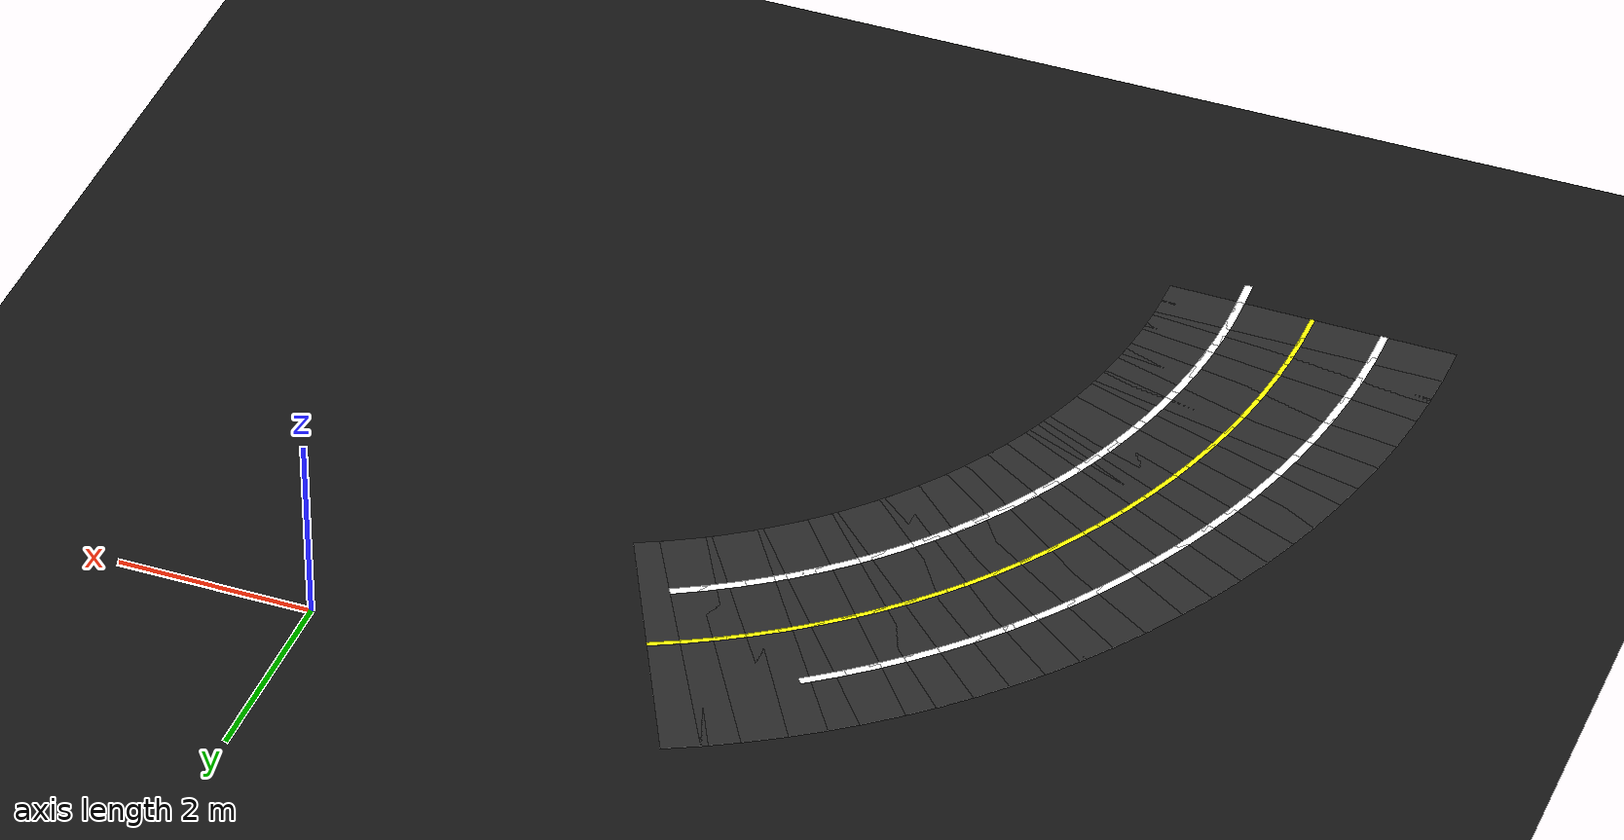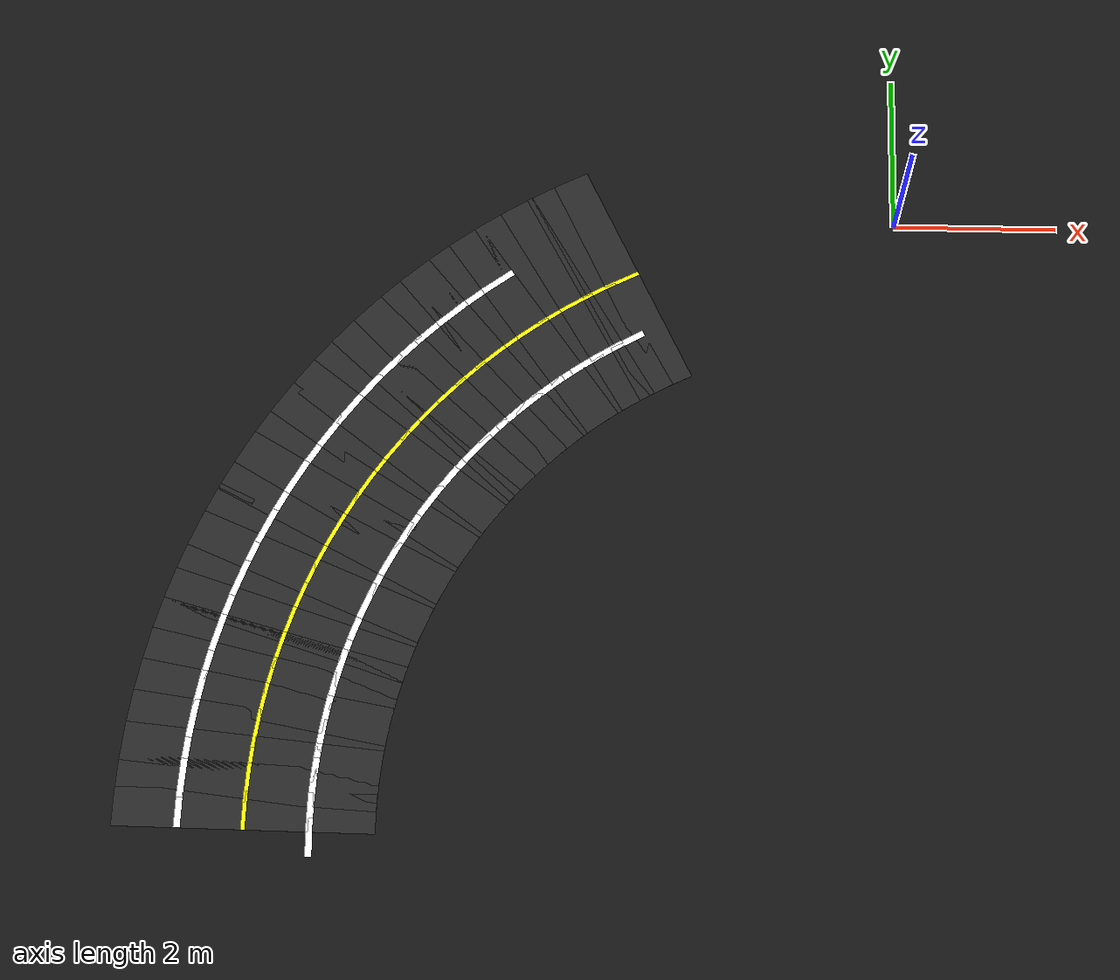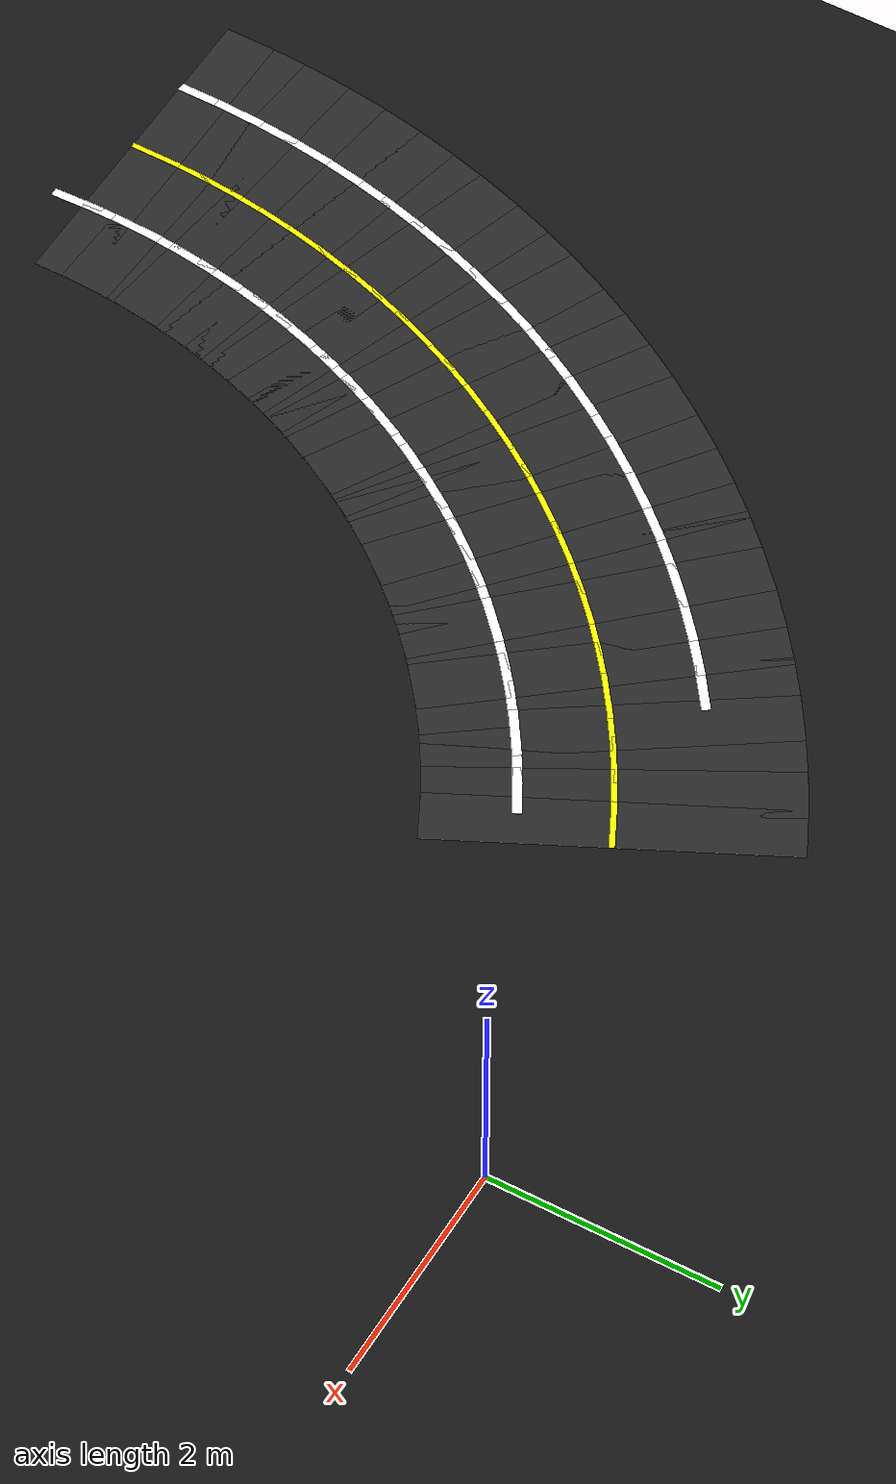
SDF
<sdf version="1.6">
 <world name="figure8_world">
  <model name="ground_plane">
   <static>true</static>
   <link name="link">
    <collision name="collision">
     <geometry><plane><normal>0 0 1</normal><size>100 100</size></plane></geometry>
    </collision>
    <visual name="visual">
     <geometry><plane><normal>0 0 1</normal><size>100 100</size></plane></geometry>
     <material><ambient>0.08 0.08 0.08 1</ambient><diffuse>0.08 0.08 0.08 1</diffuse></material>
    </visual>
   </link>
  </model>
  <model name="seg_00974">
   <static>true</static>
   <pose>-6.7466 -7.7134 0.0030 0 0 1.6024</pose>
   <link name="link">
    <collision name="collision"><geometry><box><size>0.4500 0.0800 0.002</size></box></geometry></collision>
    <visual name="visual">
     <geometry><box><size>0.4500 0.0800 0.002</size></box></geometry>
     <material><ambient>1 1 1 1</ambient><diffuse>1 1 1 1</diffuse></material>
    </visual>
   </link>
  </model>
  <model name="seg_00976">
   <static>true</static>
   <pose>-7.4996 -7.4209 0.0010 0 0 1.5603</pose>
   <link name="link">
    <collision name="collision"><geometry><box><size>0.4500 3.0000 0.002</size></box></geometry></collision>
    <visual name="visual">
     <geometry><box><size>0.4500 3.0000 0.002</size></box></geometry>
     <material><ambient>0.15 0.15 0.15 1</ambient><diffuse>0.15 0.15 0.15 1</diffuse></material>
    </visual>
   </link>
  </model>
  <model name="seg_00977">
   <static>true</static>
   <pose>-8.2495 -7.4130 0.0030 0 0 1.5603</pose>
   <link name="link">
    <collision name="collision"><geometry><box><size>0.4500 0.0800 0.002</size></box></geometry></collision>
    <visual name="visual">
     <geometry><box><size>0.4500 0.0800 0.002</size></box></geometry>
     <material><ambient>1 1 1 1</ambient><diffuse>1 1 1 1</diffuse></material>
    </visual>
   </link>
  </model>
  <model name="seg_00978">
   <static>true</static>
   <pose>-6.7496 -7.4288 0.0030 0 0 1.5603</pose>
   <link name="link">
    <collision name="collision"><geometry><box><size>0.4500 0.0800 0.002</size></box></geometry></collision>
    <visual name="visual">
     <geometry><box><size>0.4500 0.0800 0.002</size></box></geometry>
     <material><ambient>1 1 1 1</ambient><diffuse>1 1 1 1</diffuse></material>
    </visual>
   </link>
  </model>
  <model name="seg_00979">
   <static>true</static>
   <pose>-7.4996 -7.4209 0.0030 0 0 1.5603</pose>
   <link name="link">
    <collision name="collision"><geometry><box><size>0.4500 0.0500 0.002</size></box></geometry></collision>
    <visual name="visual">
     <geometry><box><size>0.4500 0.0500 0.002</size></box></geometry>
     <material><ambient>1 1 0 1</ambient><diffuse>1 1 0 1</diffuse></material>
    </visual>
   </link>
  </model>
  <model name="seg_00980">
   <static>true</static>
   <pose>-7.4896 -7.1048 0.0010 0 0 1.5181</pose>
   <link name="link">
    <collision name="collision"><geometry><box><size>0.4500 3.0000 0.002</size></box></geometry></collision>
    <visual name="visual">
     <geometry><box><size>0.4500 3.0000 0.002</size></box></geometry>
     <material><ambient>0.15 0.15 0.15 1</ambient><diffuse>0.15 0.15 0.15 1</diffuse></material>
    </visual>
   </link>
  </model>
  <model name="seg_00981">
   <static>true</static>
   <pose>-8.2385 -7.0653 0.0030 0 0 1.5181</pose>
   <link name="link">
    <collision name="collision"><geometry><box><size>0.4500 0.0800 0.002</size></box></geometry></collision>
    <visual name="visual">
     <geometry><box><size>0.4500 0.0800 0.002</size></box></geometry>
     <material><ambient>1 1 1 1</ambient><diffuse>1 1 1 1</diffuse></material>
    </visual>
   </link>
  </model>
  <model name="seg_00982">
   <static>true</static>
   <pose>-6.7406 -7.1444 0.0030 0 0 1.5181</pose>
   <link name="link">
    <collision name="collision"><geometry><box><size>0.4500 0.0800 0.002</size></box></geometry></collision>
    <visual name="visual">
     <geometry><box><size>0.4500 0.0800 0.002</size></box></geometry>
     <material><ambient>1 1 1 1</ambient><diffuse>1 1 1 1</diffuse></material>
    </visual>
   </link>
  </model>
  <model name="seg_00983">
   <static>true</static>
   <pose>-7.4896 -7.1048 0.0030 0 0 1.5181</pose>
   <link name="link">
    <collision name="collision"><geometry><box><size>0.4500 0.0500 0.002</size></box></geometry></collision>
    <visual name="visual">
     <geometry><box><size>0.4500 0.0500 0.002</size></box></geometry>
     <material><ambient>1 1 0 1</ambient><diffuse>1 1 0 1</diffuse></material>
    </visual>
   </link>
  </model>
  <model name="seg_00984">
   <static>true</static>
   <pose>-7.4663 -6.7895 0.0010 0 0 1.4759</pose>
   <link name="link">
    <collision name="collision"><geometry><box><size>0.4500 3.0000 0.002</size></box></geometry></collision>
    <visual name="visual">
     <geometry><box><size>0.4500 3.0000 0.002</size></box></geometry>
     <material><ambient>0.15 0.15 0.15 1</ambient><diffuse>0.15 0.15 0.15 1</diffuse></material>
    </visual>
   </link>
  </model>
  <model name="seg_00985">
   <static>true</static>
   <pose>-8.2129 -6.7184 0.0030 0 0 1.4759</pose>
   <link name="link">
    <collision name="collision"><geometry><box><size>0.4500 0.0800 0.002</size></box></geometry></collision>
    <visual name="visual">
     <geometry><box><size>0.4500 0.0800 0.002</size></box></geometry>
     <material><ambient>1 1 1 1</ambient><diffuse>1 1 1 1</diffuse></material>
    </visual>
   </link>
  </model>
  <model name="seg_00986">
   <static>true</static>
   <pose>-6.7196 -6.8605 0.0030 0 0 1.4759</pose>
   <link name="link">
    <collision name="collision"><geometry><box><size>0.4500 0.0800 0.002</size></box></geometry></collision>
    <visual name="visual">
     <geometry><box><size>0.4500 0.0800 0.002</size></box></geometry>
     <material><ambient>1 1 1 1</ambient><diffuse>1 1 1 1</diffuse></material>
    </visual>
   </link>
  </model>
  <model name="seg_00987">
   <static>true</static>
   <pose>-7.4663 -6.7895 0.0030 0 0 1.4759</pose>
   <link name="link">
    <collision name="collision"><geometry><box><size>0.4500 0.0500 0.002</size></box></geometry></collision>
    <visual name="visual">
     <geometry><box><size>0.4500 0.0500 0.002</size></box></geometry>
     <material><ambient>1 1 0 1</ambient><diffuse>1 1 0 1</diffuse></material>
    </visual>
   </link>
  </model>
  <model name="seg_00988">
   <static>true</static>
   <pose>-7.4297 -6.4753 0.0010 0 0 1.4337</pose>
   <link name="link">
    <collision name="collision"><geometry><box><size>0.4500 3.0000 0.002</size></box></geometry></collision>
    <visual name="visual">
     <geometry><box><size>0.4500 3.0000 0.002</size></box></geometry>
     <material><ambient>0.15 0.15 0.15 1</ambient><diffuse>0.15 0.15 0.15 1</diffuse></material>
    </visual>
   </link>
  </model>
  <model name="seg_00989">
   <static>true</static>
   <pose>-8.1726 -6.3729 0.0030 0 0 1.4337</pose>
   <link name="link">
    <collision name="collision"><geometry><box><size>0.4500 0.0800 0.002</size></box></geometry></collision>
    <visual name="visual">
     <geometry><box><size>0.4500 0.0800 0.002</size></box></geometry>
     <material><ambient>1 1 1 1</ambient><diffuse>1 1 1 1</diffuse></material>
    </visual>
   </link>
  </model>
  <model name="seg_00990">
   <static>true</static>
   <pose>-6.6867 -6.5778 0.0030 0 0 1.4337</pose>
   <link name="link">
    <collision name="collision"><geometry><box><size>0.4500 0.0800 0.002</size></box></geometry></collision>
    <visual name="visual">
     <geometry><box><size>0.4500 0.0800 0.002</size></box></geometry>
     <material><ambient>1 1 1 1</ambient><diffuse>1 1 1 1</diffuse></material>
    </visual>
   </link>
  </model>
  <model name="seg_00991">
   <static>true</static>
   <pose>-7.4297 -6.4753 0.0030 0 0 1.4337</pose>
   <link name="link">
    <collision name="collision"><geometry><box><size>0.4500 0.0500 0.002</size></box></geometry></collision>
    <visual name="visual">
     <geometry><box><size>0.4500 0.0500 0.002</size></box></geometry>
     <material><ambient>1 1 0 1</ambient><diffuse>1 1 0 1</diffuse></material>
    </visual>
   </link>
  </model>
  <model name="seg_00992">
   <static>true</static>
   <pose>-7.3799 -6.1630 0.0010 0 0 1.3916</pose>
   <link name="link">
    <collision name="collision"><geometry><box><size>0.4500 3.0000 0.002</size></box></geometry></collision>
    <visual name="visual">
     <geometry><box><size>0.4500 3.0000 0.002</size></box></geometry>
     <material><ambient>0.15 0.15 0.15 1</ambient><diffuse>0.15 0.15 0.15 1</diffuse></material>
    </visual>
   </link>
  </model>
  <model name="seg_00993">
   <static>true</static>
   <pose>-8.1179 -6.0294 0.0030 0 0 1.3916</pose>
   <link name="link">
    <collision name="collision"><geometry><box><size>0.4500 0.0800 0.002</size></box></geometry></collision>
    <visual name="visual">
     <geometry><box><size>0.4500 0.0800 0.002</size></box></geometry>
     <material><ambient>1 1 1 1</ambient><diffuse>1 1 1 1</diffuse></material>
    </visual>
   </link>
  </model>
  <model name="seg_00994">
   <static>true</static>
   <pose>-6.6419 -6.2967 0.0030 0 0 1.3916</pose>
   <link name="link">
    <collision name="collision"><geometry><box><size>0.4500 0.0800 0.002</size></box></geometry></collision>
    <visual name="visual">
     <geometry><box><size>0.4500 0.0800 0.002</size></box></geometry>
     <material><ambient>1 1 1 1</ambient><diffuse>1 1 1 1</diffuse></material>
    </visual>
   </link>
  </model>
  <model name="seg_00995">
   <static>true</static>
   <pose>-7.3799 -6.1630 0.0030 0 0 1.3916</pose>
   <link name="link">
    <collision name="collision"><geometry><box><size>0.4500 0.0500 0.002</size></box></geometry></collision>
    <visual name="visual">
     <geometry><box><size>0.4500 0.0500 0.002</size></box></geometry>
     <material><ambient>1 1 0 1</ambient><diffuse>1 1 0 1</diffuse></material>
    </visual>
   </link>
  </model>
  <model name="seg_00996">
   <static>true</static>
   <pose>-7.3170 -5.8531 0.0010 0 0 1.3494</pose>
   <link name="link">
    <collision name="collision"><geometry><box><size>0.4500 3.0000 0.002</size></box></geometry></collision>
    <visual name="visual">
     <geometry><box><size>0.4500 3.0000 0.002</size></box></geometry>
     <material><ambient>0.15 0.15 0.15 1</ambient><diffuse>0.15 0.15 0.15 1</diffuse></material>
    </visual>
   </link>
  </model>
  <model name="seg_00997">
   <static>true</static>
   <pose>-8.0486 -5.6884 0.0030 0 0 1.3494</pose>
   <link name="link">
    <collision name="collision"><geometry><box><size>0.4500 0.0800 0.002</size></box></geometry></collision>
    <visual name="visual">
     <geometry><box><size>0.4500 0.0800 0.002</size></box></geometry>
     <material><ambient>1 1 1 1</ambient><diffuse>1 1 1 1</diffuse></material>
    </visual>
   </link>
  </model>
  <model name="seg_00998">
   <static>true</static>
   <pose>-6.5853 -6.0178 0.0030 0 0 1.3494</pose>
   <link name="link">
    <collision name="collision"><geometry><box><size>0.4500 0.0800 0.002</size></box></geometry></collision>
    <visual name="visual">
     <geometry><box><size>0.4500 0.0800 0.002</size></box></geometry>
     <material><ambient>1 1 1 1</ambient><diffuse>1 1 1 1</diffuse></material>
    </visual>
   </link>
  </model>
  <model name="seg_00999">
   <static>true</static>
   <pose>-7.3170 -5.8531 0.0030 0 0 1.3494</pose>
   <link name="link">
    <collision name="collision"><geometry><box><size>0.4500 0.0500 0.002</size></box></geometry></collision>
    <visual name="visual">
     <geometry><box><size>0.4500 0.0500 0.002</size></box></geometry>
     <material><ambient>1 1 0 1</ambient><diffuse>1 1 0 1</diffuse></material>
    </visual>
   </link>
  </model>
  <model name="seg_01000">
   <static>true</static>
   <pose>-7.2410 -5.5461 0.0010 0 0 1.3072</pose>
   <link name="link">
    <collision name="collision"><geometry><box><size>0.4500 3.0000 0.002</size></box></geometry></collision>
    <visual name="visual">
     <geometry><box><size>0.4500 3.0000 0.002</size></box></geometry>
     <material><ambient>0.15 0.15 0.15 1</ambient><diffuse>0.15 0.15 0.15 1</diffuse></material>
    </visual>
   </link>
  </model>
  <model name="seg_01001">
   <static>true</static>
   <pose>-7.9651 -5.3507 0.0030 0 0 1.3072</pose>
   <link name="link">
    <collision name="collision"><geometry><box><size>0.4500 0.0800 0.002</size></box></geometry></collision>
    <visual name="visual">
     <geometry><box><size>0.4500 0.0800 0.002</size></box></geometry>
     <material><ambient>1 1 1 1</ambient><diffuse>1 1 1 1</diffuse></material>
    </visual>
   </link>
  </model>
  <model name="seg_01002">
   <static>true</static>
   <pose>-6.5169 -5.7415 0.0030 0 0 1.3072</pose>
   <link name="link">
    <collision name="collision"><geometry><box><size>0.4500 0.0800 0.002</size></box></geometry></collision>
    <visual name="visual">
     <geometry><box><size>0.4500 0.0800 0.002</size></box></geometry>
     <material><ambient>1 1 1 1</ambient><diffuse>1 1 1 1</diffuse></material>
    </visual>
   </link>
  </model>
  <model name="seg_01003">
   <static>true</static>
   <pose>-7.2410 -5.5461 0.0030 0 0 1.3072</pose>
   <link name="link">
    <collision name="collision"><geometry><box><size>0.4500 0.0500 0.002</size></box></geometry></collision>
    <visual name="visual">
     <geometry><box><size>0.4500 0.0500 0.002</size></box></geometry>
     <material><ambient>1 1 0 1</ambient><diffuse>1 1 0 1</diffuse></material>
    </visual>
   </link>
  </model>
  <model name="seg_01004">
   <static>true</static>
   <pose>-7.1522 -5.2426 0.0010 0 0 1.2651</pose>
   <link name="link">
    <collision name="collision"><geometry><box><size>0.4500 3.0000 0.002</size></box></geometry></collision>
    <visual name="visual">
     <geometry><box><size>0.4500 3.0000 0.002</size></box></geometry>
     <material><ambient>0.15 0.15 0.15 1</ambient><diffuse>0.15 0.15 0.15 1</diffuse></material>
    </visual>
   </link>
  </model>
  <model name="seg_01005">
   <static>true</static>
   <pose>-7.8674 -5.0169 0.0030 0 0 1.2651</pose>
   <link name="link">
    <collision name="collision"><geometry><box><size>0.4500 0.0800 0.002</size></box></geometry></collision>
    <visual name="visual">
     <geometry><box><size>0.4500 0.0800 0.002</size></box></geometry>
     <material><ambient>1 1 1 1</ambient><diffuse>1 1 1 1</diffuse></material>
    </visual>
   </link>
  </model>
  <model name="seg_01006">
   <static>true</static>
   <pose>-6.4370 -5.4684 0.0030 0 0 1.2651</pose>
   <link name="link">
    <collision name="collision"><geometry><box><size>0.4500 0.0800 0.002</size></box></geometry></collision>
    <visual name="visual">
     <geometry><box><size>0.4500 0.0800 0.002</size></box></geometry>
     <material><ambient>1 1 1 1</ambient><diffuse>1 1 1 1</diffuse></material>
    </visual>
   </link>
  </model>
  <model name="seg_01007">
   <static>true</static>
   <pose>-7.1522 -5.2426 0.0030 0 0 1.2651</pose>
   <link name="link">
    <collision name="collision"><geometry><box><size>0.4500 0.0500 0.002</size></box></geometry></collision>
    <visual name="visual">
     <geometry><box><size>0.4500 0.0500 0.002</size></box></geometry>
     <material><ambient>1 1 0 1</ambient><diffuse>1 1 0 1</diffuse></material>
    </visual>
   </link>
  </model>
  <model name="seg_01008">
   <static>true</static>
   <pose>-7.0507 -4.9431 0.0010 0 0 1.2229</pose>
   <link name="link">
    <collision name="collision"><geometry><box><size>0.4500 3.0000 0.002</size></box></geometry></collision>
    <visual name="visual">
     <geometry><box><size>0.4500 3.0000 0.002</size></box></geometry>
     <material><ambient>0.15 0.15 0.15 1</ambient><diffuse>0.15 0.15 0.15 1</diffuse></material>
    </visual>
   </link>
  </model>
  <model name="seg_01009">
   <static>true</static>
   <pose>-7.7558 -4.6874 0.0030 0 0 1.2229</pose>
   <link name="link">
    <collision name="collision"><geometry><box><size>0.4500 0.0800 0.002</size></box></geometry></collision>
    <visual name="visual">
     <geometry><box><size>0.4500 0.0800 0.002</size></box></geometry>
     <material><ambient>1 1 1 1</ambient><diffuse>1 1 1 1</diffuse></material>
    </visual>
   </link>
  </model>
  <model name="seg_01010">
   <static>true</static>
   <pose>-6.3456 -5.1988 0.0030 0 0 1.2229</pose>
   <link name="link">
    <collision name="collision"><geometry><box><size>0.4500 0.0800 0.002</size></box></geometry></collision>
    <visual name="visual">
     <geometry><box><size>0.4500 0.0800 0.002</size></box></geometry>
     <material><ambient>1 1 1 1</ambient><diffuse>1 1 1 1</diffuse></material>
    </visual>
   </link>
  </model>
  <model name="seg_01011">
   <static>true</static>
   <pose>-7.0507 -4.9431 0.0030 0 0 1.2229</pose>
   <link name="link">
    <collision name="collision"><geometry><box><size>0.4500 0.0500 0.002</size></box></geometry></collision>
    <visual name="visual">
     <geometry><box><size>0.4500 0.0500 0.002</size></box></geometry>
     <material><ambient>1 1 0 1</ambient><diffuse>1 1 0 1</diffuse></material>
    </visual>
   </link>
  </model>
  <model name="seg_01012">
   <static>true</static>
   <pose>-6.9366 -4.6481 0.0010 0 0 1.1807</pose>
   <link name="link">
    <collision name="collision"><geometry><box><size>0.4500 3.0000 0.002</size></box></geometry></collision>
    <visual name="visual">
     <geometry><box><size>0.4500 3.0000 0.002</size></box></geometry>
     <material><ambient>0.15 0.15 0.15 1</ambient><diffuse>0.15 0.15 0.15 1</diffuse></material>
    </visual>
   </link>
  </model>
  <model name="seg_01013">
   <static>true</static>
   <pose>-7.6303 -4.3630 0.0030 0 0 1.1807</pose>
   <link name="link">
    <collision name="collision"><geometry><box><size>0.4500 0.0800 0.002</size></box></geometry></collision>
    <visual name="visual">
     <geometry><box><size>0.4500 0.0800 0.002</size></box></geometry>
     <material><ambient>1 1 1 1</ambient><diffuse>1 1 1 1</diffuse></material>
    </visual>
   </link>
  </model>
  <model name="seg_01014">
   <static>true</static>
   <pose>-6.2430 -4.9333 0.0030 0 0 1.1807</pose>
   <link name="link">
    <collision name="collision"><geometry><box><size>0.4500 0.0800 0.002</size></box></geometry></collision>
    <visual name="visual">
     <geometry><box><size>0.4500 0.0800 0.002</size></box></geometry>
     <material><ambient>1 1 1 1</ambient><diffuse>1 1 1 1</diffuse></material>
    </visual>
   </link>
  </model>
  <model name="seg_01015">
   <static>true</static>
   <pose>-6.9366 -4.6481 0.0030 0 0 1.1807</pose>
   <link name="link">
    <collision name="collision"><geometry><box><size>0.4500 0.0500 0.002</size></box></geometry></collision>
    <visual name="visual">
     <geometry><box><size>0.4500 0.0500 0.002</size></box></geometry>
     <material><ambient>1 1 0 1</ambient><diffuse>1 1 0 1</diffuse></material>
    </visual>
   </link>
  </model>
  <model name="seg_01016">
   <static>true</static>
   <pose>-6.8102 -4.3583 0.0010 0 0 1.1386</pose>
   <link name="link">
    <collision name="collision"><geometry><box><size>0.4500 3.0000 0.002</size></box></geometry></collision>
    <visual name="visual">
     <geometry><box><size>0.4500 3.0000 0.002</size></box></geometry>
     <material><ambient>0.15 0.15 0.15 1</ambient><diffuse>0.15 0.15 0.15 1</diffuse></material>
    </visual>
   </link>
  </model>
  <model name="seg_01017">
   <static>true</static>
   <pose>-7.4913 -4.0441 0.0030 0 0 1.1386</pose>
   <link name="link">
    <collision name="collision"><geometry><box><size>0.4500 0.0800 0.002</size></box></geometry></collision>
    <visual name="visual">
     <geometry><box><size>0.4500 0.0800 0.002</size></box></geometry>
     <material><ambient>1 1 1 1</ambient><diffuse>1 1 1 1</diffuse></material>
    </visual>
   </link>
  </model>
  <model name="seg_01018">
   <static>true</static>
   <pose>-6.1292 -4.6724 0.0030 0 0 1.1386</pose>
   <link name="link">
    <collision name="collision"><geometry><box><size>0.4500 0.0800 0.002</size></box></geometry></collision>
    <visual name="visual">
     <geometry><box><size>0.4500 0.0800 0.002</size></box></geometry>
     <material><ambient>1 1 1 1</ambient><diffuse>1 1 1 1</diffuse></material>
    </visual>
   </link>
  </model>
  <model name="seg_01019">
   <static>true</static>
   <pose>-6.8102 -4.3583 0.0030 0 0 1.1386</pose>
   <link name="link">
    <collision name="collision"><geometry><box><size>0.4500 0.0500 0.002</size></box></geometry></collision>
    <visual name="visual">
     <geometry><box><size>0.4500 0.0500 0.002</size></box></geometry>
     <material><ambient>1 1 0 1</ambient><diffuse>1 1 0 1</diffuse></material>
    </visual>
   </link>
  </model>
  <model name="seg_01020">
   <static>true</static>
   <pose>-6.6717 -4.0740 0.0010 0 0 1.0964</pose>
   <link name="link">
    <collision name="collision"><geometry><box><size>0.4500 3.0000 0.002</size></box></geometry></collision>
    <visual name="visual">
     <geometry><box><size>0.4500 3.0000 0.002</size></box></geometry>
     <material><ambient>0.15 0.15 0.15 1</ambient><diffuse>0.15 0.15 0.15 1</diffuse></material>
    </visual>
   </link>
  </model>
  <model name="seg_01021">
   <static>true</static>
   <pose>-7.3389 -3.7313 0.0030 0 0 1.0964</pose>
   <link name="link">
    <collision name="collision"><geometry><box><size>0.4500 0.0800 0.002</size></box></geometry></collision>
    <visual name="visual">
     <geometry><box><size>0.4500 0.0800 0.002</size></box></geometry>
     <material><ambient>1 1 1 1</ambient><diffuse>1 1 1 1</diffuse></material>
    </visual>
   </link>
  </model>
  <model name="seg_01022">
   <static>true</static>
   <pose>-6.0046 -4.4166 0.0030 0 0 1.0964</pose>
   <link name="link">
    <collision name="collision"><geometry><box><size>0.4500 0.0800 0.002</size></box></geometry></collision>
    <visual name="visual">
     <geometry><box><size>0.4500 0.0800 0.002</size></box></geometry>
     <material><ambient>1 1 1 1</ambient><diffuse>1 1 1 1</diffuse></material>
    </visual>
   </link>
  </model>
  <model name="seg_01023">
   <static>true</static>
   <pose>-6.6717 -4.0740 0.0030 0 0 1.0964</pose>
   <link name="link">
    <collision name="collision"><geometry><box><size>0.4500 0.0500 0.002</size></box></geometry></collision>
    <visual name="visual">
     <geometry><box><size>0.4500 0.0500 0.002</size></box></geometry>
     <material><ambient>1 1 0 1</ambient><diffuse>1 1 0 1</diffuse></material>
    </visual>
   </link>
  </model>
  <model name="seg_01024">
   <static>true</static>
   <pose>-6.5214 -3.7957 0.0010 0 0 1.0542</pose>
   <link name="link">
    <collision name="collision"><geometry><box><size>0.4500 3.0000 0.002</size></box></geometry></collision>
    <visual name="visual">
     <geometry><box><size>0.4500 3.0000 0.002</size></box></geometry>
     <material><ambient>0.15 0.15 0.15 1</ambient><diffuse>0.15 0.15 0.15 1</diffuse></material>
    </visual>
   </link>
  </model>
  <model name="seg_01025">
   <static>true</static>
   <pose>-7.1735 -3.4253 0.0030 0 0 1.0542</pose>
   <link name="link">
    <collision name="collision"><geometry><box><size>0.4500 0.0800 0.002</size></box></geometry></collision>
    <visual name="visual">
     <geometry><box><size>0.4500 0.0800 0.002</size></box></geometry>
     <material><ambient>1 1 1 1</ambient><diffuse>1 1 1 1</diffuse></material>
    </visual>
   </link>
  </model>
  <model name="seg_01026">
   <static>true</static>
   <pose>-5.8692 -4.1662 0.0030 0 0 1.0542</pose>
   <link name="link">
    <collision name="collision"><geometry><box><size>0.4500 0.0800 0.002</size></box></geometry></collision>
    <visual name="visual">
     <geometry><box><size>0.4500 0.0800 0.002</size></box></geometry>
     <material><ambient>1 1 1 1</ambient><diffuse>1 1 1 1</diffuse></material>
    </visual>
   </link>
  </model>
  <model name="seg_01027">
   <static>true</static>
   <pose>-6.5214 -3.7957 0.0030 0 0 1.0542</pose>
   <link name="link">
    <collision name="collision"><geometry><box><size>0.4500 0.0500 0.002</size></box></geometry></collision>
    <visual name="visual">
     <geometry><box><size>0.4500 0.0500 0.002</size></box></geometry>
     <material><ambient>1 1 0 1</ambient><diffuse>1 1 0 1</diffuse></material>
    </visual>
   </link>
  </model>
  <model name="seg_01028">
   <static>true</static>
   <pose>-6.3594 -3.5241 0.0010 0 0 1.0121</pose>
   <link name="link">
    <collision name="collision"><geometry><box><size>0.4500 3.0000 0.002</size></box></geometry></collision>
    <visual name="visual">
     <geometry><box><size>0.4500 3.0000 0.002</size></box></geometry>
     <material><ambient>0.15 0.15 0.15 1</ambient><diffuse>0.15 0.15 0.15 1</diffuse></material>
    </visual>
   </link>
  </model>
  <model name="seg_01029">
   <static>true</static>
   <pose>-6.9954 -3.1265 0.0030 0 0 1.0121</pose>
   <link name="link">
    <collision name="collision"><geometry><box><size>0.4500 0.0800 0.002</size></box></geometry></collision>
    <visual name="visual">
     <geometry><box><size>0.4500 0.0800 0.002</size></box></geometry>
     <material><ambient>1 1 1 1</ambient><diffuse>1 1 1 1</diffuse></material>
    </visual>
   </link>
  </model>
  <model name="seg_01030">
   <static>true</static>
   <pose>-5.7235 -3.9217 0.0030 0 0 1.0121</pose>
   <link name="link">
    <collision name="collision"><geometry><box><size>0.4500 0.0800 0.002</size></box></geometry></collision>
    <visual name="visual">
     <geometry><box><size>0.4500 0.0800 0.002</size></box></geometry>
     <material><ambient>1 1 1 1</ambient><diffuse>1 1 1 1</diffuse></material>
    </visual>
   </link>
  </model>
  <model name="seg_01031">
   <static>true</static>
   <pose>-6.3594 -3.5241 0.0030 0 0 1.0121</pose>
   <link name="link">
    <collision name="collision"><geometry><box><size>0.4500 0.0500 0.002</size></box></geometry></collision>
    <visual name="visual">
     <geometry><box><size>0.4500 0.0500 0.002</size></box></geometry>
     <material><ambient>1 1 0 1</ambient><diffuse>1 1 0 1</diffuse></material>
    </visual>
   </link>
  </model>
  <model name="seg_01032">
   <static>true</static>
   <pose>-6.1862 -3.2596 0.0010 0 0 0.9699</pose>
   <link name="link">
    <collision name="collision"><geometry><box><size>0.4500 3.0000 0.002</size></box></geometry></collision>
    <visual name="visual">
     <geometry><box><size>0.4500 3.0000 0.002</size></box></geometry>
     <material><ambient>0.15 0.15 0.15 1</ambient><diffuse>0.15 0.15 0.15 1</diffuse></material>
    </visual>
   </link>
  </model>
  <model name="seg_01033">
   <static>true</static>
   <pose>-6.8048 -2.8355 0.0030 0 0 0.9699</pose>
   <link name="link">
    <collision name="collision"><geometry><box><size>0.4500 0.0800 0.002</size></box></geometry></collision>
    <visual name="visual">
     <geometry><box><size>0.4500 0.0800 0.002</size></box></geometry>
     <material><ambient>1 1 1 1</ambient><diffuse>1 1 1 1</diffuse></material>
    </visual>
   </link>
  </model>
  <model name="seg_01034">
   <static>true</static>
   <pose>-5.5675 -3.6836 0.0030 0 0 0.9699</pose>
   <link name="link">
    <collision name="collision"><geometry><box><size>0.4500 0.0800 0.002</size></box></geometry></collision>
    <visual name="visual">
     <geometry><box><size>0.4500 0.0800 0.002</size></box></geometry>
     <material><ambient>1 1 1 1</ambient><diffuse>1 1 1 1</diffuse></material>
    </visual>
   </link>
  </model>
  <model name="seg_01035">
   <static>true</static>
   <pose>-6.1862 -3.2596 0.0030 0 0 0.9699</pose>
   <link name="link">
    <collision name="collision"><geometry><box><size>0.4500 0.0500 0.002</size></box></geometry></collision>
    <visual name="visual">
     <geometry><box><size>0.4500 0.0500 0.002</size></box></geometry>
     <material><ambient>1 1 0 1</ambient><diffuse>1 1 0 1</diffuse></material>
    </visual>
   </link>
  </model>
  <model name="seg_01036">
   <static>true</static>
   <pose>-6.0019 -3.0025 0.0010 0 0 0.9277</pose>
   <link name="link">
    <collision name="collision"><geometry><box><size>0.4500 3.0000 0.002</size></box></geometry></collision>
    <visual name="visual">
     <geometry><box><size>0.4500 3.0000 0.002</size></box></geometry>
     <material><ambient>0.15 0.15 0.15 1</ambient><diffuse>0.15 0.15 0.15 1</diffuse></material>
    </visual>
   </link>
  </model>
  <model name="seg_01037">
   <static>true</static>
   <pose>-6.6021 -2.5528 0.0030 0 0 0.9277</pose>
   <link name="link">
    <collision name="collision"><geometry><box><size>0.4500 0.0800 0.002</size></box></geometry></collision>
    <visual name="visual">
     <geometry><box><size>0.4500 0.0800 0.002</size></box></geometry>
     <material><ambient>1 1 1 1</ambient><diffuse>1 1 1 1</diffuse></material>
    </visual>
   </link>
  </model>
  <model name="seg_01038">
   <static>true</static>
   <pose>-5.4017 -3.4523 0.0030 0 0 0.9277</pose>
   <link name="link">
    <collision name="collision"><geometry><box><size>0.4500 0.0800 0.002</size></box></geometry></collision>
    <visual name="visual">
     <geometry><box><size>0.4500 0.0800 0.002</size></box></geometry>
     <material><ambient>1 1 1 1</ambient><diffuse>1 1 1 1</diffuse></material>
    </visual>
   </link>
  </model>
  <model name="seg_01039">
   <static>true</static>
   <pose>-6.0019 -3.0025 0.0030 0 0 0.9277</pose>
   <link name="link">
    <collision name="collision"><geometry><box><size>0.4500 0.0500 0.002</size></box></geometry></collision>
    <visual name="visual">
     <geometry><box><size>0.4500 0.0500 0.002</size></box></geometry>
     <material><ambient>1 1 0 1</ambient><diffuse>1 1 0 1</diffuse></material>
    </visual>
   </link>
  </model>
  <model name="seg_01040">
   <static>true</static>
   <pose>-5.8070 -2.7535 0.0010 0 0 0.8855</pose>
   <link name="link">
    <collision name="collision"><geometry><box><size>0.4500 3.0000 0.002</size></box></geometry></collision>
    <visual name="visual">
     <geometry><box><size>0.4500 3.0000 0.002</size></box></geometry>
     <material><ambient>0.15 0.15 0.15 1</ambient><diffuse>0.15 0.15 0.15 1</diffuse></material>
    </visual>
   </link>
  </model>
  <model name="seg_01041">
   <static>true</static>
   <pose>-6.3877 -2.2789 0.0030 0 0 0.8855</pose>
   <link name="link">
    <collision name="collision"><geometry><box><size>0.4500 0.0800 0.002</size></box></geometry></collision>
    <visual name="visual">
     <geometry><box><size>0.4500 0.0800 0.002</size></box></geometry>
     <material><ambient>1 1 1 1</ambient><diffuse>1 1 1 1</diffuse></material>
    </visual>
   </link>
  </model>
  <model name="seg_01042">
   <static>true</static>
   <pose>-5.2263 -3.2282 0.0030 0 0 0.8855</pose>
   <link name="link">
    <collision name="collision"><geometry><box><size>0.4500 0.0800 0.002</size></box></geometry></collision>
    <visual name="visual">
     <geometry><box><size>0.4500 0.0800 0.002</size></box></geometry>
     <material><ambient>1 1 1 1</ambient><diffuse>1 1 1 1</diffuse></material>
    </visual>
   </link>
  </model>
  <model name="seg_01043">
   <static>true</static>
   <pose>-5.8070 -2.7535 0.0030 0 0 0.8855</pose>
   <link name="link">
    <collision name="collision"><geometry><box><size>0.4500 0.0500 0.002</size></box></geometry></collision>
    <visual name="visual">
     <geometry><box><size>0.4500 0.0500 0.002</size></box></geometry>
     <material><ambient>1 1 0 1</ambient><diffuse>1 1 0 1</diffuse></material>
    </visual>
   </link>
  </model>
  <model name="seg_01044">
   <static>true</static>
   <pose>-5.6017 -2.5129 0.0010 0 0 0.8434</pose>
   <link name="link">
    <collision name="collision"><geometry><box><size>0.4500 3.0000 0.002</size></box></geometry></collision>
    <visual name="visual">
     <geometry><box><size>0.4500 3.0000 0.002</size></box></geometry>
     <material><ambient>0.15 0.15 0.15 1</ambient><diffuse>0.15 0.15 0.15 1</diffuse></material>
    </visual>
   </link>
  </model>
  <model name="seg_01045">
   <static>true</static>
   <pose>-6.1619 -2.0142 0.0030 0 0 0.8434</pose>
   <link name="link">
    <collision name="collision"><geometry><box><size>0.4500 0.0800 0.002</size></box></geometry></collision>
    <visual name="visual">
     <geometry><box><size>0.4500 0.0800 0.002</size></box></geometry>
     <material><ambient>1 1 1 1</ambient><diffuse>1 1 1 1</diffuse></material>
    </visual>
   </link>
  </model>
  <model name="seg_01046">
   <static>true</static>
   <pose>-5.0415 -3.0116 0.0030 0 0 0.8434</pose>
   <link name="link">
    <collision name="collision"><geometry><box><size>0.4500 0.0800 0.002</size></box></geometry></collision>
    <visual name="visual">
     <geometry><box><size>0.4500 0.0800 0.002</size></box></geometry>
     <material><ambient>1 1 1 1</ambient><diffuse>1 1 1 1</diffuse></material>
    </visual>
   </link>
  </model>
  <model name="seg_01047">
   <static>true</static>
   <pose>-5.6017 -2.5129 0.0030 0 0 0.8434</pose>
   <link name="link">
    <collision name="collision"><geometry><box><size>0.4500 0.0500 0.002</size></box></geometry></collision>
    <visual name="visual">
     <geometry><box><size>0.4500 0.0500 0.002</size></box></geometry>
     <material><ambient>1 1 0 1</ambient><diffuse>1 1 0 1</diffuse></material>
    </visual>
   </link>
  </model>
  <model name="seg_01048">
   <static>true</static>
   <pose>-5.3865 -2.2812 0.0010 0 0 0.8012</pose>
   <link name="link">
    <collision name="collision"><geometry><box><size>0.4500 3.0000 0.002</size></box></geometry></collision>
    <visual name="visual">
     <geometry><box><size>0.4500 3.0000 0.002</size></box></geometry>
     <material><ambient>0.15 0.15 0.15 1</ambient><diffuse>0.15 0.15 0.15 1</diffuse></material>
    </visual>
   </link>
  </model>
  <model name="seg_01049">
   <static>true</static>
   <pose>-5.9251 -1.7593 0.0030 0 0 0.8012</pose>
   <link name="link">
    <collision name="collision"><geometry><box><size>0.4500 0.0800 0.002</size></box></geometry></collision>
    <visual name="visual">
     <geometry><box><size>0.4500 0.0800 0.002</size></box></geometry>
     <material><ambient>1 1 1 1</ambient><diffuse>1 1 1 1</diffuse></material>
    </visual>
   </link>
  </model>
  <model name="seg_01050">
   <static>true</static>
   <pose>-4.8478 -2.8031 0.0030 0 0 0.8012</pose>
   <link name="link">
    <collision name="collision"><geometry><box><size>0.4500 0.0800 0.002</size></box></geometry></collision>
    <visual name="visual">
     <geometry><box><size>0.4500 0.0800 0.002</size></box></geometry>
     <material><ambient>1 1 1 1</ambient><diffuse>1 1 1 1</diffuse></material>
    </visual>
   </link>
  </model>
  <model name="seg_01051">
   <static>true</static>
   <pose>-5.3865 -2.2812 0.0030 0 0 0.8012</pose>
   <link name="link">
    <collision name="collision"><geometry><box><size>0.4500 0.0500 0.002</size></box></geometry></collision>
    <visual name="visual">
     <geometry><box><size>0.4500 0.0500 0.002</size></box></geometry>
     <material><ambient>1 1 0 1</ambient><diffuse>1 1 0 1</diffuse></material>
    </visual>
   </link>
  </model>
  <model name="seg_01052">
   <static>true</static>
   <pose>-5.1617 -2.0588 0.0010 0 0 0.7590</pose>
   <link name="link">
    <collision name="collision"><geometry><box><size>0.4500 3.0000 0.002</size></box></geometry></collision>
    <visual name="visual">
     <geometry><box><size>0.4500 3.0000 0.002</size></box></geometry>
     <material><ambient>0.15 0.15 0.15 1</ambient><diffuse>0.15 0.15 0.15 1</diffuse></material>
    </visual>
   </link>
  </model>
  <model name="seg_01053">
   <static>true</static>
   <pose>-5.6779 -1.5147 0.0030 0 0 0.7590</pose>
   <link name="link">
    <collision name="collision"><geometry><box><size>0.4500 0.0800 0.002</size></box></geometry></collision>
    <visual name="visual">
     <geometry><box><size>0.4500 0.0800 0.002</size></box></geometry>
     <material><ambient>1 1 1 1</ambient><diffuse>1 1 1 1</diffuse></material>
    </visual>
   </link>
  </model>
  <model name="seg_01054">
   <static>true</static>
   <pose>-4.6455 -2.6029 0.0030 0 0 0.7590</pose>
   <link name="link">
    <collision name="collision"><geometry><box><size>0.4500 0.0800 0.002</size></box></geometry></collision>
    <visual name="visual">
     <geometry><box><size>0.4500 0.0800 0.002</size></box></geometry>
     <material><ambient>1 1 1 1</ambient><diffuse>1 1 1 1</diffuse></material>
    </visual>
   </link>
  </model>
  <model name="seg_01055">
   <static>true</static>
   <pose>-5.1617 -2.0588 0.0030 0 0 0.7590</pose>
   <link name="link">
    <collision name="collision"><geometry><box><size>0.4500 0.0500 0.002</size></box></geometry></collision>
    <visual name="visual">
     <geometry><box><size>0.4500 0.0500 0.002</size></box></geometry>
     <material><ambient>1 1 0 1</ambient><diffuse>1 1 0 1</diffuse></material>
    </visual>
   </link>
  </model>
  <model name="seg_01056">
   <static>true</static>
   <pose>-4.9277 -1.8460 0.0010 0 0 0.7169</pose>
   <link name="link">
    <collision name="collision"><geometry><box><size>0.4500 3.0000 0.002</size></box></geometry></collision>
    <visual name="visual">
     <geometry><box><size>0.4500 3.0000 0.002</size></box></geometry>
     <material><ambient>0.15 0.15 0.15 1</ambient><diffuse>0.15 0.15 0.15 1</diffuse></material>
    </visual>
   </link>
  </model>
  <model name="seg_01057">
   <static>true</static>
   <pose>-5.4205 -1.2806 0.0030 0 0 0.7169</pose>
   <link name="link">
    <collision name="collision"><geometry><box><size>0.4500 0.0800 0.002</size></box></geometry></collision>
    <visual name="visual">
     <geometry><box><size>0.4500 0.0800 0.002</size></box></geometry>
     <material><ambient>1 1 1 1</ambient><diffuse>1 1 1 1</diffuse></material>
    </visual>
   </link>
  </model>
  <model name="seg_01058">
   <static>true</static>
   <pose>-4.4350 -2.4114 0.0030 0 0 0.7169</pose>
   <link name="link">
    <collision name="collision"><geometry><box><size>0.4500 0.0800 0.002</size></box></geometry></collision>
    <visual name="visual">
     <geometry><box><size>0.4500 0.0800 0.002</size></box></geometry>
     <material><ambient>1 1 1 1</ambient><diffuse>1 1 1 1</diffuse></material>
    </visual>
   </link>
  </model>
  <model name="seg_01059">
   <static>true</static>
   <pose>-4.9277 -1.8460 0.0030 0 0 0.7169</pose>
   <link name="link">
    <collision name="collision"><geometry><box><size>0.4500 0.0500 0.002</size></box></geometry></collision>
    <visual name="visual">
     <geometry><box><size>0.4500 0.0500 0.002</size></box></geometry>
     <material><ambient>1 1 0 1</ambient><diffuse>1 1 0 1</diffuse></material>
    </visual>
   </link>
  </model>
  <model name="seg_01060">
   <static>true</static>
   <pose>-4.6850 -1.6433 0.0010 0 0 0.6747</pose>
   <link name="link">
    <collision name="collision"><geometry><box><size>0.4500 3.0000 0.002</size></box></geometry></collision>
    <visual name="visual">
     <geometry><box><size>0.4500 3.0000 0.002</size></box></geometry>
     <material><ambient>0.15 0.15 0.15 1</ambient><diffuse>0.15 0.15 0.15 1</diffuse></material>
    </visual>
   </link>
  </model>
  <model name="seg_01061">
   <static>true</static>
   <pose>-5.1535 -1.0576 0.0030 0 0 0.6747</pose>
   <link name="link">
    <collision name="collision"><geometry><box><size>0.4500 0.0800 0.002</size></box></geometry></collision>
    <visual name="visual">
     <geometry><box><size>0.4500 0.0800 0.002</size></box></geometry>
     <material><ambient>1 1 1 1</ambient><diffuse>1 1 1 1</diffuse></material>
    </visual>
   </link>
  </model>
  <model name="seg_01062">
   <static>true</static>
   <pose>-4.2165 -2.2290 0.0030 0 0 0.6747</pose>
   <link name="link">
    <collision name="collision"><geometry><box><size>0.4500 0.0800 0.002</size></box></geometry></collision>
    <visual name="visual">
     <geometry><box><size>0.4500 0.0800 0.002</size></box></geometry>
     <material><ambient>1 1 1 1</ambient><diffuse>1 1 1 1</diffuse></material>
    </visual>
   </link>
  </model>
  <model name="seg_01063">
   <static>true</static>
   <pose>-4.6850 -1.6433 0.0030 0 0 0.6747</pose>
   <link name="link">
    <collision name="collision"><geometry><box><size>0.4500 0.0500 0.002</size></box></geometry></collision>
    <visual name="visual">
     <geometry><box><size>0.4500 0.0500 0.002</size></box></geometry>
     <material><ambient>1 1 0 1</ambient><diffuse>1 1 0 1</diffuse></material>
    </visual>
   </link>
  </model>
  <model name="seg_01064">
   <static>true</static>
   <pose>-4.4339 -1.4510 0.0010 0 0 0.6325</pose>
   <link name="link">
    <collision name="collision"><geometry><box><size>0.4500 3.0000 0.002</size></box></geometry></collision>
    <visual name="visual">
     <geometry><box><size>0.4500 3.0000 0.002</size></box></geometry>
     <material><ambient>0.15 0.15 0.15 1</ambient><diffuse>0.15 0.15 0.15 1</diffuse></material>
    </visual>
   </link>
  </model>
  <model name="seg_01065">
   <static>true</static>
   <pose>-4.8773 -0.8461 0.0030 0 0 0.6325</pose>
   <link name="link">
    <collision name="collision"><geometry><box><size>0.4500 0.0800 0.002</size></box></geometry></collision>
    <visual name="visual">
     <geometry><box><size>0.4500 0.0800 0.002</size></box></geometry>
     <material><ambient>1 1 1 1</ambient><diffuse>1 1 1 1</diffuse></material>
    </visual>
   </link>
  </model>
  <model name="seg_01066">
   <static>true</static>
   <pose>-3.9905 -2.0559 0.0030 0 0 0.6325</pose>
   <link name="link">
    <collision name="collision"><geometry><box><size>0.4500 0.0800 0.002</size></box></geometry></collision>
    <visual name="visual">
     <geometry><box><size>0.4500 0.0800 0.002</size></box></geometry>
     <material><ambient>1 1 1 1</ambient><diffuse>1 1 1 1</diffuse></material>
    </visual>
   </link>
  </model>
  <model name="seg_01067">
   <static>true</static>
   <pose>-4.4339 -1.4510 0.0030 0 0 0.6325</pose>
   <link name="link">
    <collision name="collision"><geometry><box><size>0.4500 0.0500 0.002</size></box></geometry></collision>
    <visual name="visual">
     <geometry><box><size>0.4500 0.0500 0.002</size></box></geometry>
     <material><ambient>1 1 0 1</ambient><diffuse>1 1 0 1</diffuse></material>
    </visual>
   </link>
  </model>
  <model name="seg_01068">
   <static>true</static>
   <pose>-4.1750 -1.2695 0.0010 0 0 0.5904</pose>
   <link name="link">
    <collision name="collision"><geometry><box><size>0.4500 3.0000 0.002</size></box></geometry></collision>
    <visual name="visual">
     <geometry><box><size>0.4500 3.0000 0.002</size></box></geometry>
     <material><ambient>0.15 0.15 0.15 1</ambient><diffuse>0.15 0.15 0.15 1</diffuse></material>
    </visual>
   </link>
  </model>
  <model name="seg_01070">
   <static>true</static>
   <pose>-3.7575 -1.8925 0.0030 0 0 0.5904</pose>
   <link name="link">
    <collision name="collision"><geometry><box><size>0.4500 0.0800 0.002</size></box></geometry></collision>
    <visual name="visual">
     <geometry><box><size>0.4500 0.0800 0.002</size></box></geometry>
     <material><ambient>1 1 1 1</ambient><diffuse>1 1 1 1</diffuse></material>
    </visual>
   </link>
  </model>
  <model name="seg_01071">
   <static>true</static>
   <pose>-4.1750 -1.2695 0.0030 0 0 0.5904</pose>
   <link name="link">
    <collision name="collision"><geometry><box><size>0.4500 0.0500 0.002</size></box></geometry></collision>
    <visual name="visual">
     <geometry><box><size>0.4500 0.0500 0.002</size></box></geometry>
     <material><ambient>1 1 0 1</ambient><diffuse>1 1 0 1</diffuse></material>
    </visual>
   </link>
  </model>
  <model name="seg_01072">
   <static>true</static>
   <pose>-3.9086 -1.0990 0.0010 0 0 0.5482</pose>
   <link name="link">
    <collision name="collision"><geometry><box><size>0.4500 3.0000 0.002</size></box></geometry></collision>
    <visual name="visual">
     <geometry><box><size>0.4500 3.0000 0.002</size></box></geometry>
     <material><ambient>0.15 0.15 0.15 1</ambient><diffuse>0.15 0.15 0.15 1</diffuse></material>
    </visual>
   </link>
  </model>
  <model name="seg_01074">
   <static>true</static>
   <pose>-3.5178 -1.7391 0.0030 0 0 0.5482</pose>
   <link name="link">
    <collision name="collision"><geometry><box><size>0.4500 0.0800 0.002</size></box></geometry></collision>
    <visual name="visual">
     <geometry><box><size>0.4500 0.0800 0.002</size></box></geometry>
     <material><ambient>1 1 1 1</ambient><diffuse>1 1 1 1</diffuse></material>
    </visual>
   </link>
  </model>
  <model name="seg_01075">
   <static>true</static>
   <pose>-3.9086 -1.0990 0.0030 0 0 0.5482</pose>
   <link name="link">
    <collision name="collision"><geometry><box><size>0.4500 0.0500 0.002</size></box></geometry></collision>
    <visual name="visual">
     <geometry><box><size>0.4500 0.0500 0.002</size></box></geometry>
     <material><ambient>1 1 0 1</ambient><diffuse>1 1 0 1</diffuse></material>
    </visual>
   </link>
  </model>
  <model name="seg_01076">
   <static>true</static>
   <pose>-3.6353 -0.9399 0.0010 0 0 0.5060</pose>
   <link name="link">
    <collision name="collision"><geometry><box><size>0.4500 3.0000 0.002</size></box></geometry></collision>
    <visual name="visual">
     <geometry><box><size>0.4500 3.0000 0.002</size></box></geometry>
     <material><ambient>0.15 0.15 0.15 1</ambient><diffuse>0.15 0.15 0.15 1</diffuse></material>
    </visual>
   </link>
  </model>
  <model name="seg_01078">
   <static>true</static>
   <pose>-3.2718 -1.5959 0.0030 0 0 0.5060</pose>
   <link name="link">
    <collision name="collision"><geometry><box><size>0.4500 0.0800 0.002</size></box></geometry></collision>
    <visual name="visual">
     <geometry><box><size>0.4500 0.0800 0.002</size></box></geometry>
     <material><ambient>1 1 1 1</ambient><diffuse>1 1 1 1</diffuse></material>
    </visual>
   </link>
  </model>
  <model name="seg_01079">
   <static>true</static>
   <pose>-3.6353 -0.9399 0.0030 0 0 0.5060</pose>
   <link name="link">
    <collision name="collision"><geometry><box><size>0.4500 0.0500 0.002</size></box></geometry></collision>
    <visual name="visual">
     <geometry><box><size>0.4500 0.0500 0.002</size></box></geometry>
     <material><ambient>1 1 0 1</ambient><diffuse>1 1 0 1</diffuse></material>
    </visual>
   </link>
  </model>
  <model name="seg_01080">
   <static>true</static>
   <pose>-3.3555 -0.7925 0.0010 0 0 0.4639</pose>
   <link name="link">
    <collision name="collision"><geometry><box><size>0.4500 3.0000 0.002</size></box></geometry></collision>
    <visual name="visual">
     <geometry><box><size>0.4500 3.0000 0.002</size></box></geometry>
     <material><ambient>0.15 0.15 0.15 1</ambient><diffuse>0.15 0.15 0.15 1</diffuse></material>
    </visual>
   </link>
  </model>
  <model name="seg_01083">
   <static>true</static>
   <pose>-3.3555 -0.7925 0.0030 0 0 0.4639</pose>
   <link name="link">
    <collision name="collision"><geometry><box><size>0.4500 0.0500 0.002</size></box></geometry></collision>
    <visual name="visual">
     <geometry><box><size>0.4500 0.0500 0.002</size></box></geometry>
     <material><ambient>1 1 0 1</ambient><diffuse>1 1 0 1</diffuse></material>
    </visual>
   </link>
  </model>
 </world>
</sdf>
